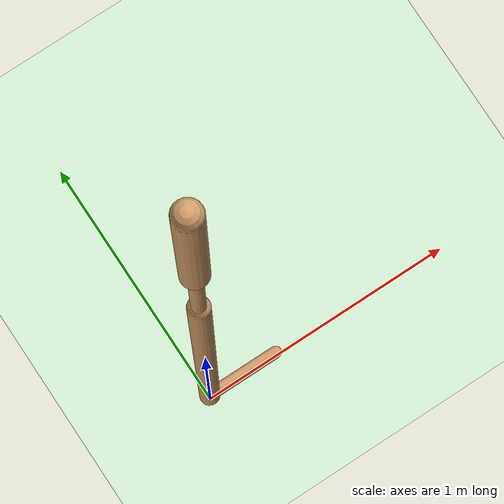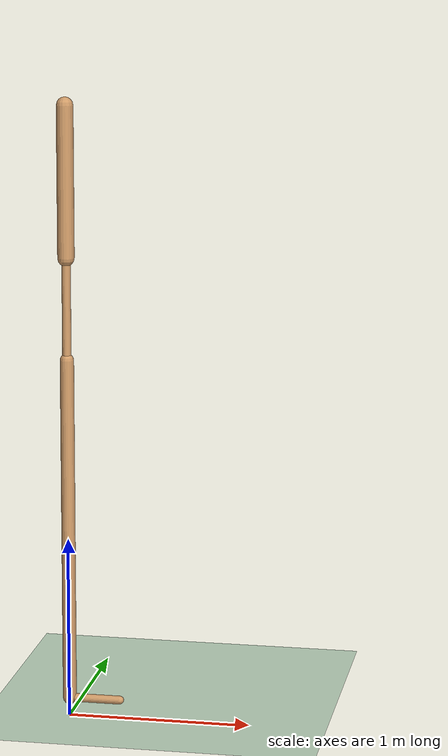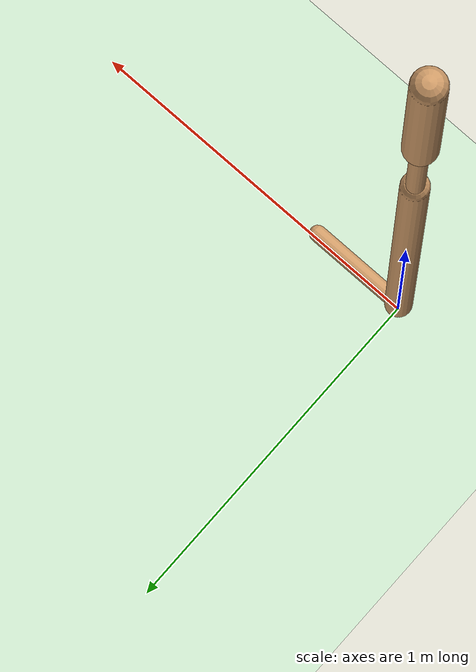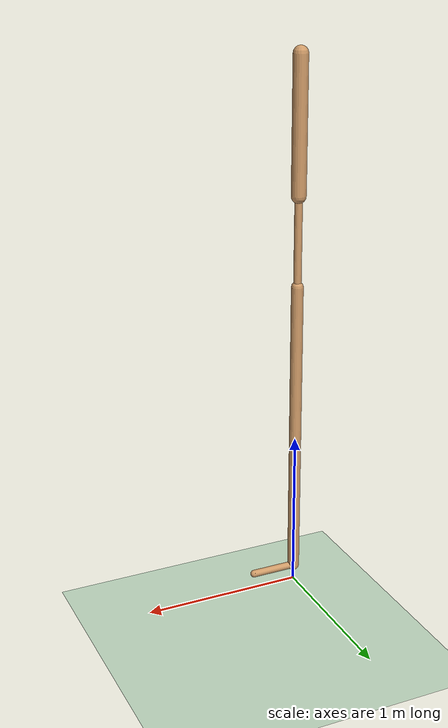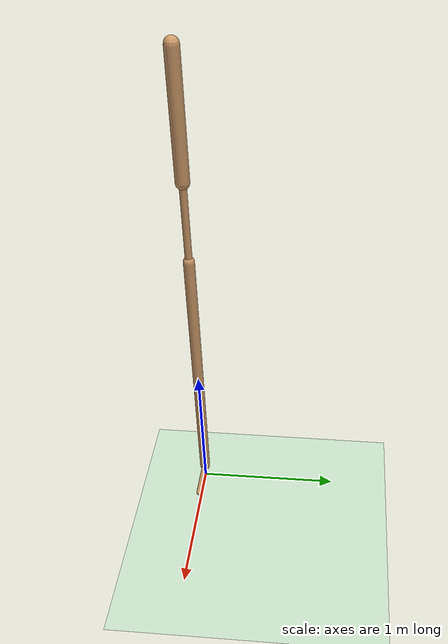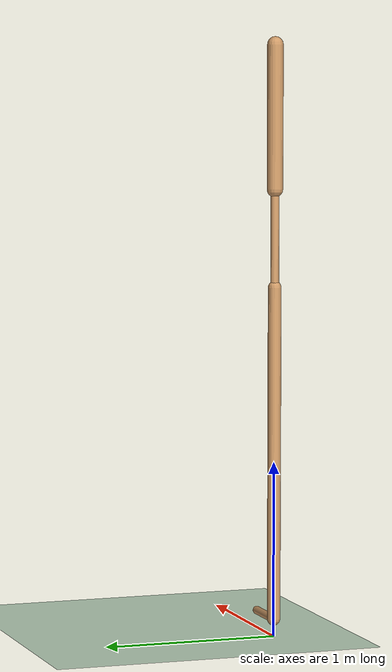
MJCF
<mujoco model="walker2d">
  <compiler angle="degree" inertiafromgeom="true" />
  <default>
    <joint armature="0.01" damping=".1" limited="true" />
    <geom conaffinity="0" condim="3" contype="1" density="1000" friction=".7 .1 .1" rgba="0.8 0.6 .4 1" />
  </default>
  <option integrator="RK4" timestep="0.002" />
  <worldbody>
    <light cutoff="100" diffuse="1 1 1" dir="-0 0 -1.3" directional="true" exponent="1" pos="0 0 1.3" specular=".1 .1 .1" />
    <geom conaffinity="1" condim="3" name="floor" pos="0 0 0" rgba="0.8 0.9 0.8 1" size="40 40 40" type="plane" material="MatPlane" />
    <body name="torso" pos="0 0 2.9542784452438355">
      <camera name="track" mode="trackcom" pos="0 -5 -1.25" xyaxes="1 0 0 0 0 1" />
      <joint armature="0" axis="1 0 0" damping="0" limited="false" name="rootx" pos="0 0 -1.25" stiffness="0" type="slide" />
      <joint armature="0" axis="0 0 1" damping="0" limited="false" name="rootz" pos="0 0 -1.25" ref="1.25" stiffness="0" type="slide" />
      <joint armature="0" axis="0 1 0" damping="0" limited="false" name="rooty" pos="0 0 0" stiffness="0" type="hinge" />
      <geom friction="0.9" name="torso_geom" size="0.045400746166706085 0.40494322776794434" type="capsule" />
      <body name="thigh" pos="0 0 -0.40494322776794434">
        <joint axis="0 -1 0" name="thigh_joint" pos="0 0 0" range="-150 0" type="hinge" />
        <site name="torso_thigh_site" pos="0 0 0" size="0.01" type="sphere" rgba="1 0 0 0.5" />
        <geom friction="0.9" pos="0 0 -0.27687811851501465" name="thigh_geom" size="0.02390027418732643 0.27687811851501465" type="capsule" />
        <body name="leg" pos="0 0 -1.5015457272529602">
          <joint axis="0 -1 0" name="leg_joint" pos="0 0 0.9477894902229309" range="-150 0" type="hinge" />
          <site name="thigh_leg_site" pos="0 0 0.25" size="0.01" type="sphere" rgba="1 0 0 0.5" />
          <geom friction="0.9" name="leg_geom" size="0.037395648658275604 0.9477894902229309" type="capsule" />
          <body name="foot" pos="0.28061628341674805 0 -1.047789490222931">
            <joint axis="0 -1 0" name="foot_joint" pos="-0.28061628341674805 0 0.1" range="-45 45" type="hinge" />
            <site name="leg_foot_site" pos="-0.2 0 0.1" size="0.01" type="sphere" rgba="1 0 0 0.5" />
            <geom friction="0.9" pos="-0.14030814170837402 0 0.1" quat="0.70710678118654757 0 -0.70710678118654746 0" name="foot_geom" size="0.02308839000761509 0.14030814170837402" type="capsule" />
          </body>
        </body>
      </body>

      <body name="thigh_left" pos="0 0 -0.40494322776794434">
        <joint axis="0 -1 0" name="thigh_left_joint" pos="0 0 0" range="-150 0" type="hinge" />
        <site name="torso_thigh_left_site" pos="0 0 0" size="0.01" type="sphere" rgba="1 0 0 0.5" />
        <geom friction="0.9" name="thigh_left_geom" rgba=".7 .3 .6 1" size="0.02390027418732643 0.27687811851501465" pos="0 0 -0.27687811851501465" type="capsule" />
        <body name="leg_left" pos="0 0 -1.5015457272529602">
          <joint axis="0 -1 0" name="leg_left_joint" pos="0 0 0.9477894902229309" range="-150 0" type="hinge" />
          <site name="thigh_leg_left_site" pos="0 0 0.25" size="0.01" type="sphere" rgba="1 0 0 0.5" />
          <geom friction="0.9" name="leg_left_geom" rgba=".7 .3 .6 1" size="0.037395648658275604 0.9477894902229309" type="capsule" />
          <body name="foot_left" pos="0.28061628341674805 0 -1.047789490222931">
            <joint axis="0 -1 0" name="foot_left_joint" pos="-0.28061628341674805 0 0.1" range="-45 45" type="hinge" />
            <site name="leg_foot_left_site" pos="-0.2 0 0.1" size="0.01" type="sphere" rgba="1 0 0 0.5" />
            <geom friction="1.9" name="foot_left_geom" rgba=".7 .3 .6 1" size="0.02308839000761509 0.14030814170837402" pos="-0.14030814170837402 0 0.1" type="capsule" quat="0.70710678118654757 0 -0.70710678118654746 0" />
          </body>
        </body>
      </body>
    </body>
  </worldbody>
  <actuator>

    <motor ctrllimited="true" ctrlrange="-1.0 1.0" gear="28.117187360905525" joint="thigh_joint" />
    <motor ctrllimited="true" ctrlrange="-1.0 1.0" gear="331.3553896061058" joint="leg_joint" />
    <motor ctrllimited="true" ctrlrange="-1.0 1.0" gear="20.77627436030742" joint="foot_joint" />
    <motor ctrllimited="true" ctrlrange="-1.0 1.0" gear="28.117187360905525" joint="thigh_left_joint" />
    <motor ctrllimited="true" ctrlrange="-1.0 1.0" gear="331.3553896061058" joint="leg_left_joint" />
    <motor ctrllimited="true" ctrlrange="-1.0 1.0" gear="20.77627436030742" joint="foot_left_joint" />

  </actuator>
    <asset>
        <texture type="skybox" builtin="gradient" rgb1=".4 .5 .6" rgb2="0 0 0" width="100" height="100" />
        <texture builtin="flat" height="1278" mark="cross" markrgb="1 1 1" name="texgeom" random="0.01" rgb1="0.8 0.6 0.4" rgb2="0.8 0.6 0.4" type="cube" width="127" />
        <texture builtin="checker" height="100" name="texplane" rgb1="0 0 0" rgb2="0.8 0.8 0.8" type="2d" width="100" />
        <material name="MatPlane" reflectance="0.5" shininess="1" specular="1" texrepeat="60 60" texture="texplane" />
        <material name="geom" texture="texgeom" texuniform="true" />
    </asset>

  <sensor>
    <force site="torso_thigh_site" name="torso_thigh_sensor" />
    <force site="thigh_leg_site" name="thigh_leg_sensor" />
    <force site="leg_foot_site" name="leg_foot_sensor" />
    <force site="torso_thigh_left_site" name="torso_thigh_left_sensor" />
    <force site="thigh_leg_left_site" name="thigh_leg_left_sensor" />
    <force site="leg_foot_left_site" name="leg_foot_left_sensor" />
  </sensor>
</mujoco>
